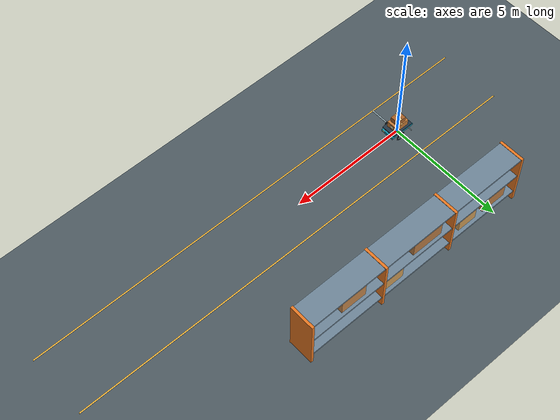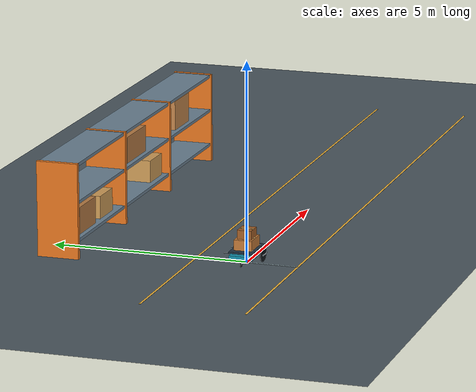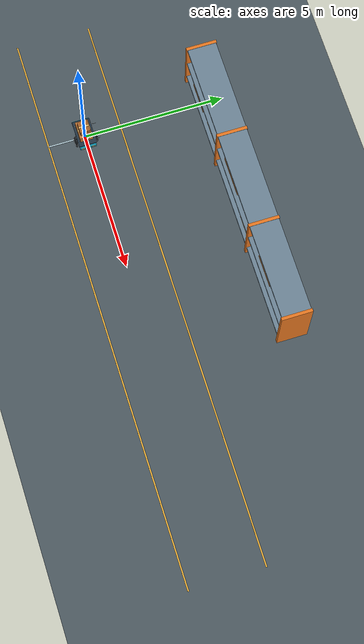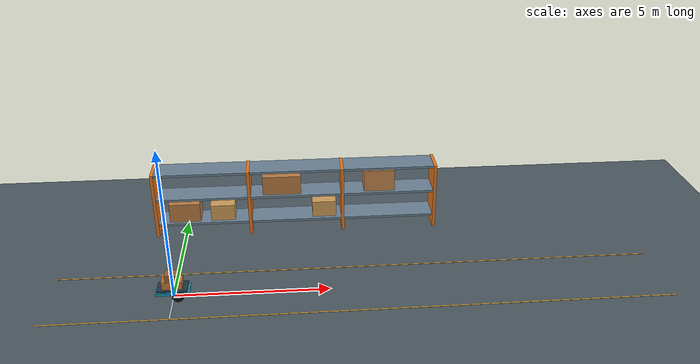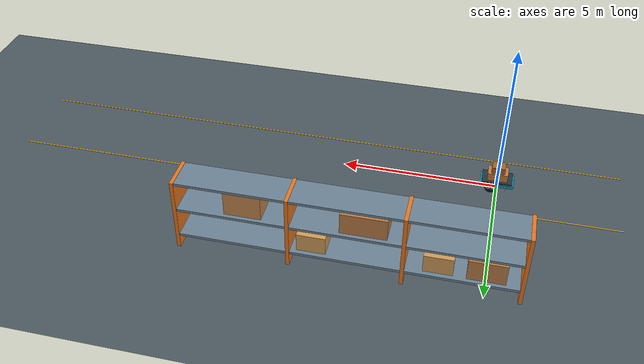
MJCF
<mujoco model="Warehouse payload inspection robot">
  <compiler angle="radian"/>
  <option timestep="0.002" integrator="implicitfast" cone="elliptic" iterations="100"/>
  <visual><global offwidth="1280" offheight="720"/><quality shadowsize="2048"/>
    <headlight ambient="0.45 0.45 0.45" diffuse="0.65 0.65 0.65" specular="0.1 0.1 0.1"/>
  </visual>
  <default>
    <geom friction="0.9 0.003 0.0001" solref="0.012 1" solimp="0.95 0.99 0.001"/>
    <joint damping="0.04" armature="0.002"/>
    <default class="visual"><geom contype="0" conaffinity="0" mass="0"/></default>
    <default class="drive"><geom type="ellipsoid" size="0.20 0.055 0.20" mass="1.2" rgba="0.055 0.075 0.09 1" priority="2" friction="0.9 0.003 0.0001"/></default>
  </default>
  <asset>
    <texture name="sky" type="skybox" builtin="gradient" rgb1="0.12 0.19 0.28" rgb2="0.50 0.62 0.69" width="512" height="3072"/>
    <texture name="floor" type="2d" builtin="checker" rgb1="0.28 0.33 0.36" rgb2="0.32 0.37 0.40" width="512" height="512"/>
    <material name="floor_material" texture="floor" texrepeat="40 40" reflectance="0.08"/>
  </asset>
  <worldbody>
    <light pos="2 -4 9" dir="0 0 -1" diffuse="0.9 0.9 0.9"/>
    <light pos="-3 5 7" dir="0 0 -1" diffuse="0.5 0.6 0.7"/>
    <geom name="floor" type="plane" size="30 30 0.1" material="floor_material"/>
    <geom class="visual" type="box" pos="6 -1.3 0.003" size="10 0.025 0.003" rgba="0.96 0.72 0.23 1"/>
    <geom class="visual" type="box" pos="6 1.3 0.003" size="10 0.025 0.003" rgba="0.96 0.72 0.23 1"/>
    <geom class="visual" type="box" pos="0 0 0.004" size="0.025 1.3 0.003" rgba="0.7 0.8 0.84 1"/>
    <!-- Context only: shelving beyond the diagnostic aisle never affects contact. -->
    <geom class="visual" type="box" pos="4 4.5 0.45" size="5 0.5 0.04" rgba="0.43 0.52 0.59 1"/>
    <geom class="visual" type="box" pos="4 4.5 1.4" size="5 0.5 0.04" rgba="0.43 0.52 0.59 1"/>
    <geom class="visual" type="box" pos="4 4.5 2.35" size="5 0.5 0.04" rgba="0.43 0.52 0.59 1"/>
    <geom class="visual" type="box" pos="-1 4.5 1.2" size="0.055 0.53 1.2" rgba="0.91 0.47 0.13 1"/>
    <geom class="visual" type="box" pos="2.33 4.5 1.2" size="0.055 0.53 1.2" rgba="0.91 0.47 0.13 1"/>
    <geom class="visual" type="box" pos="5.66 4.5 1.2" size="0.055 0.53 1.2" rgba="0.91 0.47 0.13 1"/>
    <geom class="visual" type="box" pos="9 4.5 1.2" size="0.055 0.53 1.2" rgba="0.91 0.47 0.13 1"/>
    <geom class="visual" type="box" pos="0 4.5 0.83" size="0.55 0.38 0.34" rgba="0.73 0.49 0.27 1"/>
    <geom class="visual" type="box" pos="1.35 4.5 0.78" size="0.43 0.36 0.29" rgba="0.82 0.62 0.35 1"/>
    <geom class="visual" type="box" pos="3.5 4.5 1.78" size="0.68 0.38 0.34" rgba="0.73 0.49 0.27 1"/>
    <geom class="visual" type="box" pos="5 4.5 0.78" size="0.43 0.36 0.29" rgba="0.82 0.62 0.35 1"/>
    <geom class="visual" type="box" pos="7 4.5 1.83" size="0.55 0.38 0.39" rgba="0.77 0.53 0.3 1"/>
    <body name="chassis" pos="0 0 0.242">
      <freejoint name="chassis_free"/>
      <geom name="chassis_geom" type="box" size="0.53 0.29 0.05" mass="22" rgba="0.07 0.58 0.69 1"/>
      <geom name="cargo_deck" class="visual" type="box" pos="0 0 0.11" size="0.48 0.31 0.02" rgba="0.14 0.21 0.27 1"/>
      <geom class="visual" type="box" pos="0.535 0.18 0.015" size="0.008 0.055 0.022" rgba="1 0.94 0.6 1"/>
      <geom class="visual" type="box" pos="0.535 -0.18 0.015" size="0.008 0.055 0.022" rgba="1 0.94 0.6 1"/>
      <geom name="cargo_rail_rear" class="visual" type="capsule" fromto="-0.28 -0.26 0.145 -0.28 0.48 0.034" size="0.012" rgba="0.7 0.77 0.8 1"/>
      <geom name="cargo_rail_front" class="visual" type="capsule" fromto="0.28 -0.26 0.145 0.28 0.48 0.034" size="0.012" rgba="0.7 0.77 0.8 1"/>
      <site name="imu" pos="0 0 0"/>
      <camera name="overview" mode="track" pos="1 -6 5" xyaxes="1 0 0 0 0.64 0.77" fovy="60"/>
      <camera name="chase" mode="track" pos="-2.2 -2.2 1.8" xyaxes="0.707 -0.707 0 0.35 0.35 0.87" fovy="46"/>
      <camera name="side" mode="track" pos="0 -5 1.7" xyaxes="1 0 0 0 0.28 0.96" fovy="60"/>
      <body name="wheel_left" pos="0.18 0.355 -0.04">
        <joint name="wheel_left" axis="0 1 0" frictionloss="0.025"/>
        <geom name="tire_left" class="drive"/>
        <geom class="visual" type="box" size="0.14 0.057 0.015" rgba="0.8 0.85 0.88 1"/>
      </body>
      <body name="wheel_right" pos="0.18 -0.355 -0.04">
        <joint name="wheel_right" axis="0 1 0" frictionloss="0.025"/>
        <geom name="tire_right" class="drive"/>
        <geom class="visual" type="box" size="0.14 0.057 0.015" rgba="0.8 0.85 0.88 1"/>
      </body>
      <body name="caster" pos="-0.36 0 -0.09">
        <joint name="caster_swivel" axis="0 0 1" damping="0.15" frictionloss="0.008"/>
        <geom type="capsule" fromto="0 0 0 -0.08 0 -0.04" size="0.022" mass="0.25" rgba="0.6 0.66 0.7 1" contype="0" conaffinity="0"/>
        <body name="caster_wheel" pos="-0.08 0 -0.06">
          <joint name="caster_roll" axis="0 1 0" damping="0.002" frictionloss="0.006"/>
          <geom name="caster_tire" type="ellipsoid" size="0.09 0.025 0.09" mass="0.3" priority="2" friction="0.85 0.001 0.0001" rgba="0.07 0.09 0.11 1"/>
          <geom class="visual" type="box" size="0.06 0.027 0.01" rgba="0.72 0.77 0.8 1"/>
        </body>
      </body>
      <body name="cargo" pos="0 0 0.265">
        <joint name="cargo_slide" type="slide" axis="0 1 -0.15" range="0 0.24" damping="5" armature="0" solreflimit="0.02 1"/>
        <geom name="cargo_box" type="box" size="0.32 0.225 0.13" mass="8" contype="0" conaffinity="0" rgba="0.77 0.48 0.22 1"/>
        <geom class="visual" type="box" pos="0 0 0.131" size="0.045 0.226 0.001" rgba="0.92 0.75 0.43 1"/>
        <geom class="visual" type="box" pos="0.321 0 0" size="0.001 0.085 0.065" rgba="0.94 0.9 0.76 1"/>
        <geom name="cargo_top" class="visual" type="box" pos="0 0 0.24" size="0.21 0.18 0.11" rgba="0.65 0.38 0.16 1"/>
        <geom class="visual" type="box" pos="0 0 0.351" size="0.035 0.181 0.001" rgba="0.9 0.72 0.41 1"/>
      </body>
    </body>
  </worldbody>
  <equality><joint name="cargo_latch" joint1="cargo_slide" polycoef="0 0 0 0 0" solref="0.005 1"/></equality>
  <actuator>
    <motor name="left" joint="wheel_left" gear="3" ctrlrange="-1 1"/>
    <motor name="right" joint="wheel_right" gear="3" ctrlrange="-1 1"/>
  </actuator>
  <sensor><accelerometer name="acceleration" site="imu"/><gyro name="angular_velocity" site="imu"/></sensor>
</mujoco>
